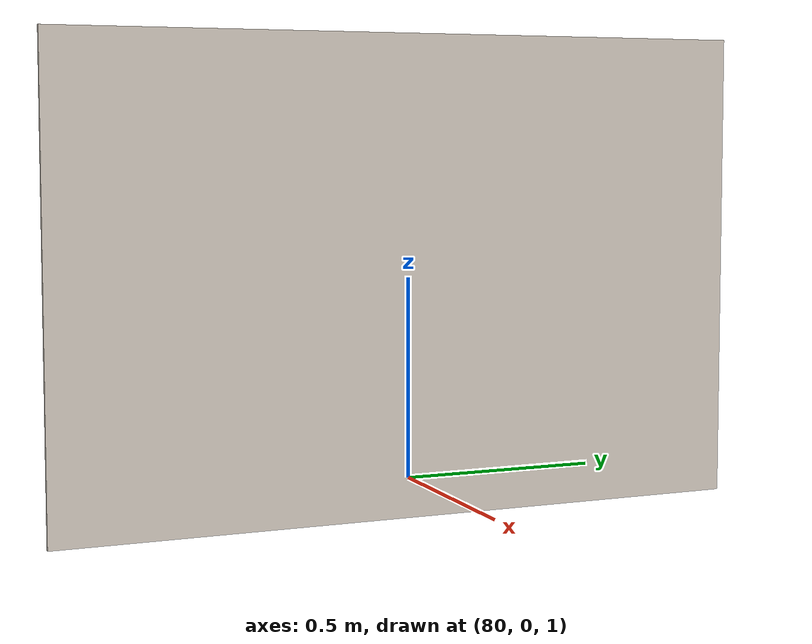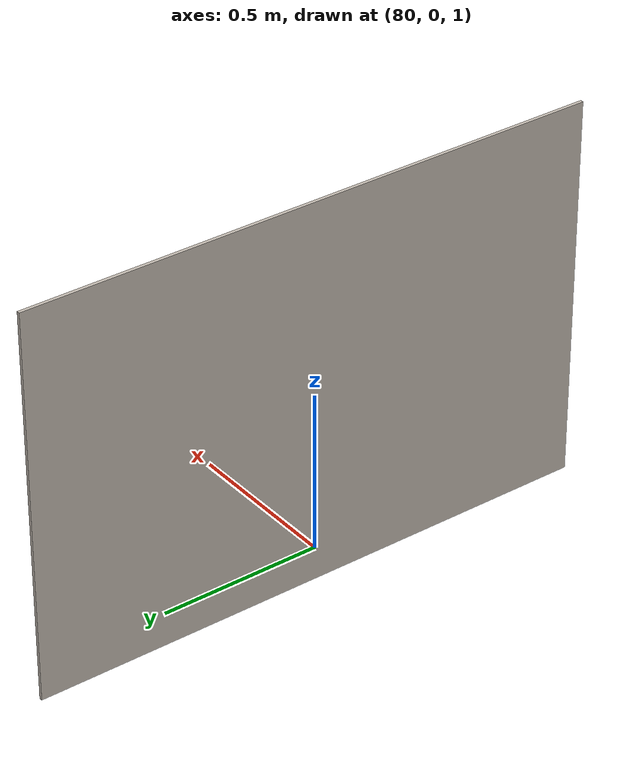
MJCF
<mujoco model="human_models">
    <!--
    真实人脸照片平面
    使用 mesh 几何体确保纹理完整显示
    -->

    <asset>
        <!-- 平面 mesh (带纹理坐标) -->
        <mesh name="photo_plane_mesh"
              file="photo_plane.obj"/>

        <!-- 多人脸照片纹理 -->
        <texture name="multi_people_tex" type="2d"
                 file="AA1BBAcX.png"/>
        <material name="multi_people_mat"
                  texture="multi_people_tex"
                  emission="1.0"
                  specular="0.0"
                  shininess="0.0"/>
    </asset>

    <worldbody>
        <body name="photo_panel" pos="80.0 0 1.5" mocap="true">
            <geom name="photo_geom"
                  type="mesh"
                  mesh="photo_plane_mesh"
                  material="multi_people_mat"
                  contype="0"
                  conaffinity="0"/>
        </body>

    </worldbody>

</mujoco>
